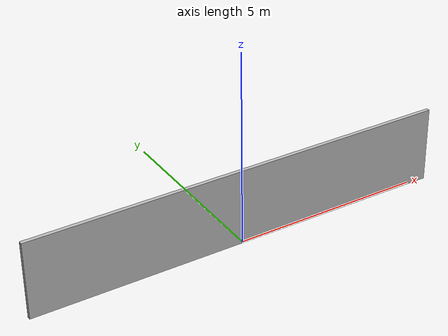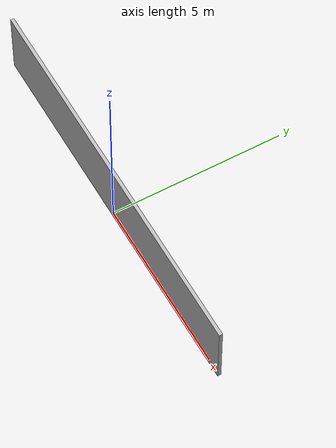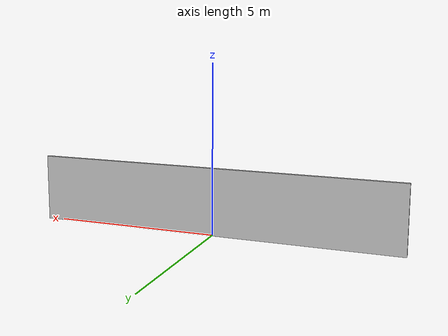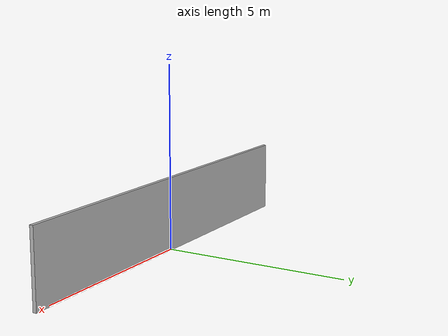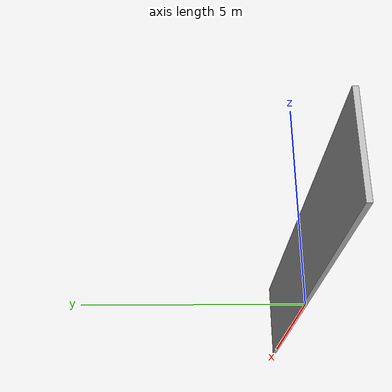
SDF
<?xml version="1.0"?>
<sdf version="1.7">
    <model name="wall_e">
        <static>true</static>
        <link name="link">
            <pose>0 0 1.0 0 0 0</pose>
            <collision name="collision">
                <geometry>
                    <box>
                        <size>11.0 0.1 2.0</size>
                    </box>
                </geometry>
            </collision>
            <visual name="visual">
                <cast_shadows>false</cast_shadows>
                <geometry>
                    <box>
                        <size>11.0 0.1 2.0</size>
                    </box>
                </geometry>
                <material>
                    <script>
                        <uri>model://wall_a/materials/scripts</uri>
                        <uri>model://wall_a/materials/textures</uri>
                        <name>vrc/wall</name>
                    </script>
                </material>
            </visual>
        </link>
    </model>
</sdf>
